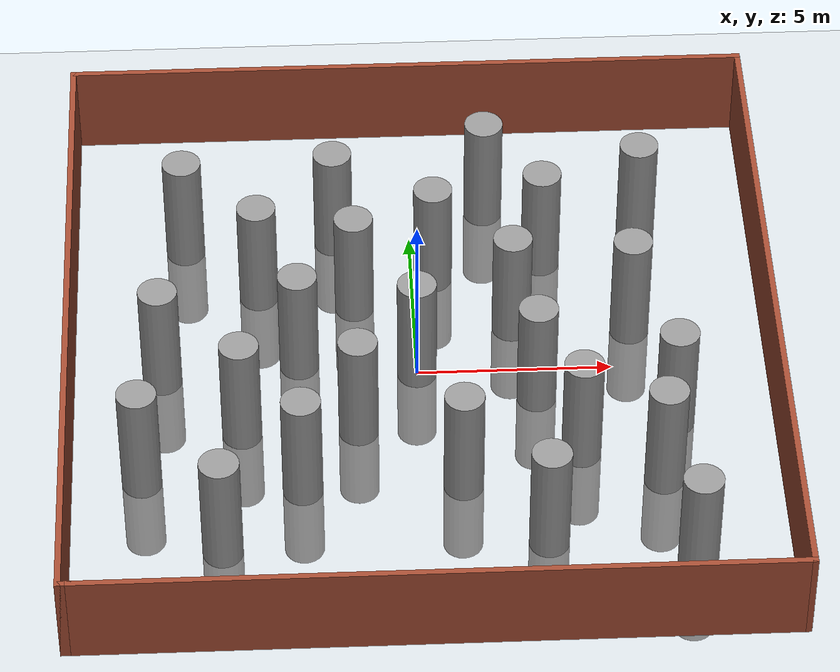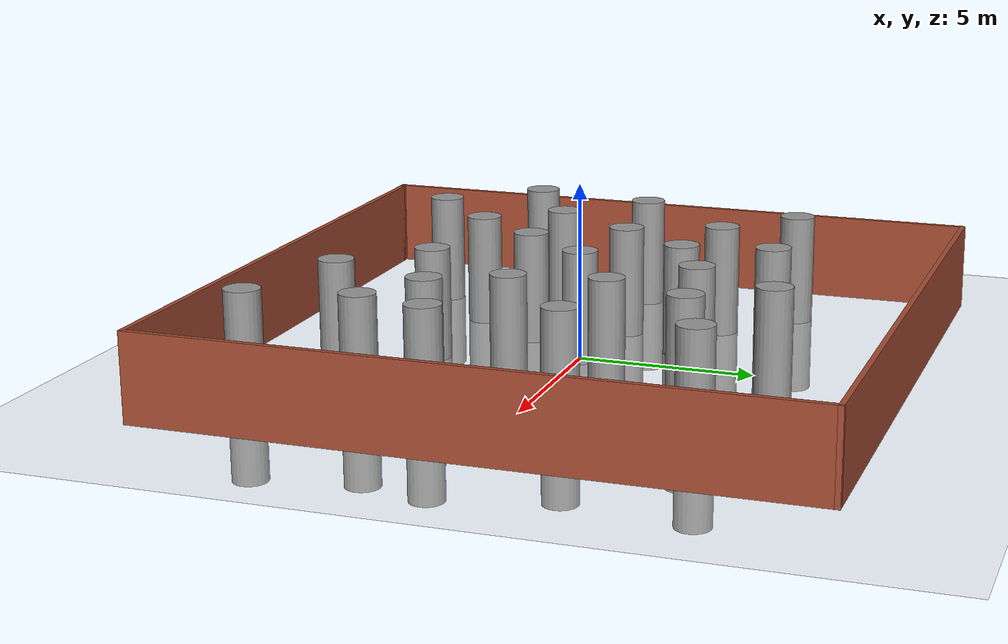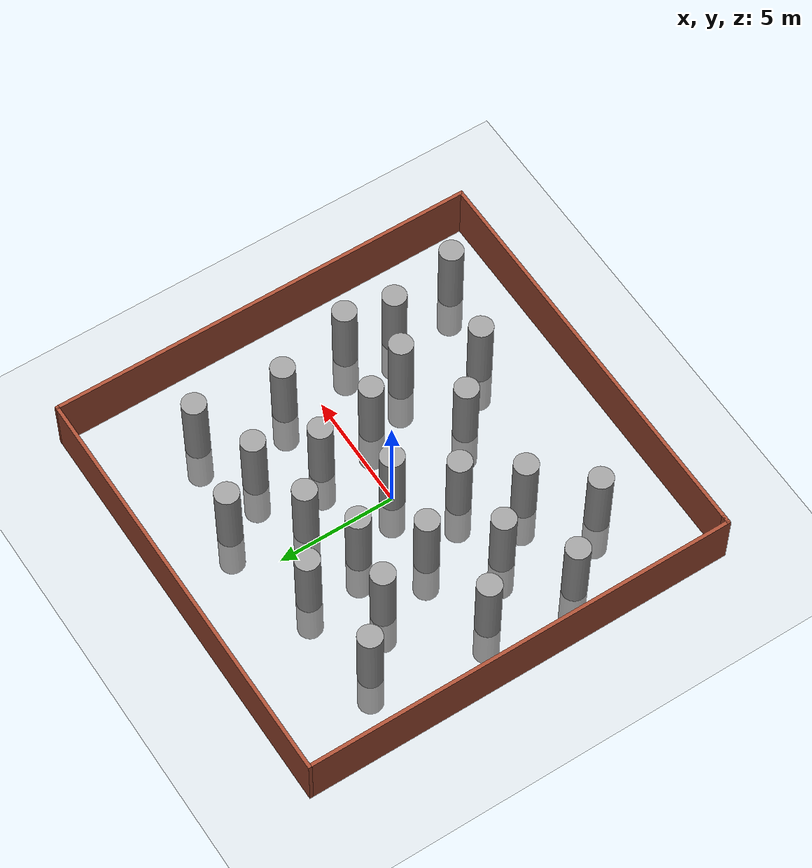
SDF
<sdf version="1.7">
 <world name="default">
  <light name="sun" type="directional">
   <pose>0 0 10 0 -0 0</pose>
   <diffuse>0.8 0.8 0.8 1</diffuse>
   <specular>0.2 0.2 0.2 1</specular>
   <attenuation>
    <range>1000</range>
    <constant>0.9</constant>
    <linear>0.01</linear>
    <quadratic>0.001</quadratic>
   </attenuation>
   <direction>-0.5 0.1 -0.9</direction>
   <spot><inner_angle>0</inner_angle><outer_angle>0</outer_angle><falloff>0</falloff></spot>
  </light>
  <model name="ground_plane">
   <static>1</static>
   <link name="link">
    <collision name="collision">
     <geometry><plane><normal>0 0 1</normal><size>100 100</size></plane></geometry>
     <surface>
      <contact><collide_bitmask>65535</collide_bitmask></contact>
      <friction><ode><mu>100</mu><mu2>50</mu2></ode></friction>
     </surface>
    </collision>
    <visual name="visual">
     <cast_shadows>0</cast_shadows>
     <geometry><plane><normal>0 0 1</normal><size>100 100</size></plane></geometry>
     <material>
      <script><uri>file://media/materials/scripts/gazebo.material</uri><name>Gazebo/Grey</name></script>
     </material>
    </visual>
   </link>
  </model>
  <gravity>0 0 -9.8</gravity>
  <magnetic_field>6e-06 2.3e-05 -4.2e-05</magnetic_field>
  <atmosphere type="adiabatic"/>
  <physics type="ode">
   <max_step_size>0.001</max_step_size>
   <real_time_factor>1</real_time_factor>
   <real_time_update_rate>1000</real_time_update_rate>
  </physics>
  <scene><ambient>0.4 0.4 0.4 1</ambient><background>0.7 0.7 0.7 1</background><shadows>1</shadows></scene>
  <spherical_coordinates>
   <surface_model>EARTH_WGS84</surface_model>
   <latitude_deg>0</latitude_deg>
   <longitude_deg>0</longitude_deg>
   <elevation>0</elevation>
   <heading_deg>0</heading_deg>
  </spherical_coordinates>
  <model name="wall">
   <pose>0.09987 0.064412 0 0 -0 0</pose>
   <link name="Wall_0">
    <collision name="Wall_0_Collision">
     <geometry><box><size>17.75 0.15 2.5</size></box></geometry>
     <pose>0 0 1.25 0 -0 0</pose>
    </collision>
    <visual name="Wall_0_Visual">
     <pose>0 0 1.25 0 -0 0</pose>
     <geometry><box><size>17.75 0.15 2.5</size></box></geometry>
     <material>
      <script><uri>file://media/materials/scripts/gazebo.material</uri><name>Gazebo/Bricks</name></script>
      <ambient>1 1 1 1</ambient>
     </material>
     <meta><layer>0</layer></meta>
    </visual>
    <pose>0.125 -9.175 0 0 -0 0</pose>
   </link>
   <link name="Wall_1">
    <collision name="Wall_1_Collision">
     <geometry><box><size>18.5 0.15 2.5</size></box></geometry>
     <pose>0 0 1.25 0 -0 0</pose>
    </collision>
    <visual name="Wall_1_Visual">
     <pose>0 0 1.25 0 -0 0</pose>
     <geometry><box><size>18.5 0.15 2.5</size></box></geometry>
     <material>
      <script><uri>file://media/materials/scripts/gazebo.material</uri><name>Gazebo/Bricks</name></script>
      <ambient>1 1 1 1</ambient>
     </material>
     <meta><layer>0</layer></meta>
    </visual>
    <pose>8.925 -0 0 0 -0 1.5708</pose>
   </link>
   <link name="Wall_4">
    <collision name="Wall_4_Collision">
     <geometry><box><size>18 0.15 2.5</size></box></geometry>
     <pose>0 0 1.25 0 -0 0</pose>
    </collision>
    <visual name="Wall_4_Visual">
     <pose>0 0 1.25 0 -0 0</pose>
     <geometry><box><size>18 0.15 2.5</size></box></geometry>
     <material>
      <script><uri>file://media/materials/scripts/gazebo.material</uri><name>Gazebo/Bricks</name></script>
      <ambient>1 1 1 1</ambient>
     </material>
     <meta><layer>0</layer></meta>
    </visual>
    <pose>0 9.175 0 0 -0 3.14159</pose>
   </link>
   <link name="Wall_5">
    <collision name="Wall_5_Collision">
     <geometry><box><size>18.5 0.15 2.5</size></box></geometry>
     <pose>0 0 1.25 0 -0 0</pose>
    </collision>
    <visual name="Wall_5_Visual">
     <pose>0 0 1.25 0 -0 0</pose>
     <geometry><box><size>18.5 0.15 2.5</size></box></geometry>
     <material>
      <script><uri>file://media/materials/scripts/gazebo.material</uri><name>Gazebo/Bricks</name></script>
      <ambient>1 1 1 1</ambient>
     </material>
     <meta><layer>0</layer></meta>
    </visual>
    <pose>-8.925 -0 0 0 -0 -1.5708</pose>
   </link>
   <link name="Wall_7">
    <collision name="Wall_7_Collision">
     <geometry><box><size>0.4 0.15 2.5</size></box></geometry>
     <pose>0 0 1.25 0 -0 0</pose>
    </collision>
    <visual name="Wall_7_Visual">
     <pose>0 0 1.25 0 -0 0</pose>
     <geometry><box><size>0.4 0.15 2.5</size></box></geometry>
     <material>
      <script><uri>file://media/materials/scripts/gazebo.material</uri><name>Gazebo/Bricks</name></script>
      <ambient>1 1 1 1</ambient>
     </material>
     <meta><layer>0</layer></meta>
    </visual>
    <pose>-8.8 -9.175 0 0 -0 0</pose>
   </link>
   <static>1</static>
  </model>
  <model name="obstacle_complex哦">
   <link name="link_0">
    <inertial>
     <mass>5.29129</mass>
     <inertia><ixx>12.6759</ixx><ixy>0</ixy><ixz>0</ixz><iyy>12.6759</iyy><iyz>0</iyz><izz>0.661411</izz></inertia>
    </inertial>
    <pose>-6.15295 5.08979 0 0 -0 0</pose>
    <visual name="visual">
     <geometry><cylinder><radius>0.5</radius><length>5.29126</length></cylinder></geometry>
     <material>
      <lighting>1</lighting>
      <script><uri>file://media/materials/scripts/gazebo.material</uri><name>Gazebo/Grey</name></script>
      <shader type="pixel"/>
     </material>
    </visual>
    <collision name="collision">
     <geometry><cylinder><radius>0.5</radius><length>5.29126</length></cylinder></geometry>
     <surface>
      <friction>
       <ode><mu>1</mu><mu2>1</mu2><fdir1>0 0 0</fdir1><slip1>0</slip1><slip2>0</slip2></ode>
       <torsional>
        <coefficient>1</coefficient>
        <patch_radius>0</patch_radius>
        <surface_radius>0</surface_radius>
        <use_patch_radius>1</use_patch_radius>
        <ode><slip>0</slip></ode>
       </torsional>
      </friction>
      <bounce><restitution_coefficient>0</restitution_coefficient><threshold>1e+06</threshold></bounce>
      <contact>
       <collide_without_contact>0</collide_without_contact>
       <collide_without_contact_bitmask>1</collide_without_contact_bitmask>
       <collide_bitmask>1</collide_bitmask>
       <ode>
        <soft_cfm>0</soft_cfm>
        <soft_erp>0.2</soft_erp>
        <kp>1e+13</kp>
        <kd>1</kd>
        <max_vel>0.01</max_vel>
        <min_depth>0</min_depth>
       </ode>
       <bullet>
        <split_impulse>1</split_impulse>
        <split_impulse_penetration_threshold>-0.01</split_impulse_penetration_threshold>
        <soft_cfm>0</soft_cfm>
        <soft_erp>0.2</soft_erp>
        <kp>1e+13</kp>
        <kd>1</kd>
       </bullet>
      </contact>
     </surface>
    </collision>
   </link>
   <link name="link_0_clone">
    <inertial>
     <mass>5.29129</mass>
     <inertia><ixx>12.6759</ixx><ixy>0</ixy><ixz>0</ixz><iyy>12.6759</iyy><iyz>0</iyz><izz>0.661411</izz></inertia>
    </inertial>
    <pose>-4.24123 3.2981 0 0 -0 0</pose>
    <visual name="visual">
     <geometry><cylinder><radius>0.5</radius><length>5.29126</length></cylinder></geometry>
     <material>
      <lighting>1</lighting>
      <script><uri>file://media/materials/scripts/gazebo.material</uri><name>Gazebo/Grey</name></script>
      <shader type="pixel"/>
     </material>
    </visual>
    <collision name="collision">
     <geometry><cylinder><radius>0.5</radius><length>5.29126</length></cylinder></geometry>
     <surface>
      <friction>
       <ode><mu>1</mu><mu2>1</mu2><fdir1>0 0 0</fdir1><slip1>0</slip1><slip2>0</slip2></ode>
       <torsional>
        <coefficient>1</coefficient>
        <patch_radius>0</patch_radius>
        <surface_radius>0</surface_radius>
        <use_patch_radius>1</use_patch_radius>
        <ode><slip>0</slip></ode>
       </torsional>
      </friction>
      <bounce><restitution_coefficient>0</restitution_coefficient><threshold>1e+06</threshold></bounce>
      <contact>
       <collide_without_contact>0</collide_without_contact>
       <collide_without_contact_bitmask>1</collide_without_contact_bitmask>
       <collide_bitmask>1</collide_bitmask>
       <ode>
        <soft_cfm>0</soft_cfm>
        <soft_erp>0.2</soft_erp>
        <kp>1e+13</kp>
        <kd>1</kd>
        <max_vel>0.01</max_vel>
        <min_depth>0</min_depth>
       </ode>
       <bullet>
        <split_impulse>1</split_impulse>
        <split_impulse_penetration_threshold>-0.01</split_impulse_penetration_threshold>
        <soft_cfm>0</soft_cfm>
        <soft_erp>0.2</soft_erp>
        <kp>1e+13</kp>
        <kd>1</kd>
       </bullet>
      </contact>
     </surface>
    </collision>
   </link>
   <link name="link_0_clone_0">
    <inertial>
     <mass>5.29129</mass>
     <inertia><ixx>12.6759</ixx><ixy>0</ixy><ixz>0</ixz><iyy>12.6759</iyy><iyz>0</iyz><izz>0.661411</izz></inertia>
    </inertial>
    <pose>-2.24123 5.2981 0 0 -0 0</pose>
    <visual name="visual">
     <geometry><cylinder><radius>0.5</radius><length>5.29126</length></cylinder></geometry>
     <material>
      <lighting>1</lighting>
      <script><uri>file://media/materials/scripts/gazebo.material</uri><name>Gazebo/Grey</name></script>
      <shader type="pixel"/>
     </material>
    </visual>
    <collision name="collision">
     <geometry><cylinder><radius>0.5</radius><length>5.29126</length></cylinder></geometry>
     <surface>
      <friction>
       <ode><mu>1</mu><mu2>1</mu2><fdir1>0 0 0</fdir1><slip1>0</slip1><slip2>0</slip2></ode>
       <torsional>
        <coefficient>1</coefficient>
        <patch_radius>0</patch_radius>
        <surface_radius>0</surface_radius>
        <use_patch_radius>1</use_patch_radius>
        <ode><slip>0</slip></ode>
       </torsional>
      </friction>
      <bounce><restitution_coefficient>0</restitution_coefficient><threshold>1e+06</threshold></bounce>
      <contact>
       <collide_without_contact>0</collide_without_contact>
       <collide_without_contact_bitmask>1</collide_without_contact_bitmask>
       <collide_bitmask>1</collide_bitmask>
       <ode>
        <soft_cfm>0</soft_cfm>
        <soft_erp>0.2</soft_erp>
        <kp>1e+13</kp>
        <kd>1</kd>
        <max_vel>0.01</max_vel>
        <min_depth>0</min_depth>
       </ode>
       <bullet>
        <split_impulse>1</split_impulse>
        <split_impulse_penetration_threshold>-0.01</split_impulse_penetration_threshold>
        <soft_cfm>0</soft_cfm>
        <soft_erp>0.2</soft_erp>
        <kp>1e+13</kp>
        <kd>1</kd>
       </bullet>
      </contact>
     </surface>
    </collision>
   </link>
   <link name="link_0_clone_1">
    <inertial>
     <mass>5.29129</mass>
     <inertia><ixx>12.6759</ixx><ixy>0</ixy><ixz>0</ixz><iyy>12.6759</iyy><iyz>0</iyz><izz>0.661411</izz></inertia>
    </inertial>
    <pose>-0.241233 0.298101 0 0 -0 0</pose>
    <visual name="visual">
     <geometry><cylinder><radius>0.5</radius><length>5.29126</length></cylinder></geometry>
     <material>
      <lighting>1</lighting>
      <script><uri>file://media/materials/scripts/gazebo.material</uri><name>Gazebo/Grey</name></script>
      <shader type="pixel"/>
     </material>
    </visual>
    <collision name="collision">
     <geometry><cylinder><radius>0.5</radius><length>5.29126</length></cylinder></geometry>
     <surface>
      <friction>
       <ode><mu>1</mu><mu2>1</mu2><fdir1>0 0 0</fdir1><slip1>0</slip1><slip2>0</slip2></ode>
       <torsional>
        <coefficient>1</coefficient>
        <patch_radius>0</patch_radius>
        <surface_radius>0</surface_radius>
        <use_patch_radius>1</use_patch_radius>
        <ode><slip>0</slip></ode>
       </torsional>
      </friction>
      <bounce><restitution_coefficient>0</restitution_coefficient><threshold>1e+06</threshold></bounce>
      <contact>
       <collide_without_contact>0</collide_without_contact>
       <collide_without_contact_bitmask>1</collide_without_contact_bitmask>
       <collide_bitmask>1</collide_bitmask>
       <ode>
        <soft_cfm>0</soft_cfm>
        <soft_erp>0.2</soft_erp>
        <kp>1e+13</kp>
        <kd>1</kd>
        <max_vel>0.01</max_vel>
        <min_depth>0</min_depth>
       </ode>
       <bullet>
        <split_impulse>1</split_impulse>
        <split_impulse_penetration_threshold>-0.01</split_impulse_penetration_threshold>
        <soft_cfm>0</soft_cfm>
        <soft_erp>0.2</soft_erp>
        <kp>1e+13</kp>
        <kd>1</kd>
       </bullet>
      </contact>
     </surface>
    </collision>
   </link>
   <link name="link_0_clone_10">
    <inertial>
     <mass>5.29129</mass>
     <inertia><ixx>12.6759</ixx><ixy>0</ixy><ixz>0</ixz><iyy>12.6759</iyy><iyz>0</iyz><izz>0.661411</izz></inertia>
    </inertial>
    <pose>-1.79235 -1.7019 0 0 -0 0</pose>
    <visual name="visual">
     <geometry><cylinder><radius>0.5</radius><length>5.29126</length></cylinder></geometry>
     <material>
      <lighting>1</lighting>
      <script><uri>file://media/materials/scripts/gazebo.material</uri><name>Gazebo/Grey</name></script>
      <shader type="pixel"/>
     </material>
    </visual>
    <collision name="collision">
     <geometry><cylinder><radius>0.5</radius><length>5.29126</length></cylinder></geometry>
     <surface>
      <friction>
       <ode><mu>1</mu><mu2>1</mu2><fdir1>0 0 0</fdir1><slip1>0</slip1><slip2>0</slip2></ode>
       <torsional>
        <coefficient>1</coefficient>
        <patch_radius>0</patch_radius>
        <surface_radius>0</surface_radius>
        <use_patch_radius>1</use_patch_radius>
        <ode><slip>0</slip></ode>
       </torsional>
      </friction>
      <bounce><restitution_coefficient>0</restitution_coefficient><threshold>1e+06</threshold></bounce>
      <contact>
       <collide_without_contact>0</collide_without_contact>
       <collide_without_contact_bitmask>1</collide_without_contact_bitmask>
       <collide_bitmask>1</collide_bitmask>
       <ode>
        <soft_cfm>0</soft_cfm>
        <soft_erp>0.2</soft_erp>
        <kp>1e+13</kp>
        <kd>1</kd>
        <max_vel>0.01</max_vel>
        <min_depth>0</min_depth>
       </ode>
       <bullet>
        <split_impulse>1</split_impulse>
        <split_impulse_penetration_threshold>-0.01</split_impulse_penetration_threshold>
        <soft_cfm>0</soft_cfm>
        <soft_erp>0.2</soft_erp>
        <kp>1e+13</kp>
        <kd>1</kd>
       </bullet>
      </contact>
     </surface>
    </collision>
   </link>
   <link name="link_0_clone_11">
    <inertial>
     <mass>5.29129</mass>
     <inertia><ixx>12.6759</ixx><ixy>0</ixy><ixz>0</ixz><iyy>12.6759</iyy><iyz>0</iyz><izz>0.661411</izz></inertia>
    </inertial>
    <pose>-3.24123 -3.7019 0 0 -0 0</pose>
    <visual name="visual">
     <geometry><cylinder><radius>0.5</radius><length>5.29126</length></cylinder></geometry>
     <material>
      <lighting>1</lighting>
      <script><uri>file://media/materials/scripts/gazebo.material</uri><name>Gazebo/Grey</name></script>
      <shader type="pixel"/>
     </material>
    </visual>
    <collision name="collision">
     <geometry><cylinder><radius>0.5</radius><length>5.29126</length></cylinder></geometry>
     <surface>
      <friction>
       <ode><mu>1</mu><mu2>1</mu2><fdir1>0 0 0</fdir1><slip1>0</slip1><slip2>0</slip2></ode>
       <torsional>
        <coefficient>1</coefficient>
        <patch_radius>0</patch_radius>
        <surface_radius>0</surface_radius>
        <use_patch_radius>1</use_patch_radius>
        <ode><slip>0</slip></ode>
       </torsional>
      </friction>
      <bounce><restitution_coefficient>0</restitution_coefficient><threshold>1e+06</threshold></bounce>
      <contact>
       <collide_without_contact>0</collide_without_contact>
       <collide_without_contact_bitmask>1</collide_without_contact_bitmask>
       <collide_bitmask>1</collide_bitmask>
       <ode>
        <soft_cfm>0</soft_cfm>
        <soft_erp>0.2</soft_erp>
        <kp>1e+13</kp>
        <kd>1</kd>
        <max_vel>0.01</max_vel>
        <min_depth>0</min_depth>
       </ode>
       <bullet>
        <split_impulse>1</split_impulse>
        <split_impulse_penetration_threshold>-0.01</split_impulse_penetration_threshold>
        <soft_cfm>0</soft_cfm>
        <soft_erp>0.2</soft_erp>
        <kp>1e+13</kp>
        <kd>1</kd>
       </bullet>
      </contact>
     </surface>
    </collision>
   </link>
   <link name="link_0_clone_12">
    <inertial>
     <mass>5.29129</mass>
     <inertia><ixx>12.6759</ixx><ixy>0</ixy><ixz>0</ixz><iyy>12.6759</iyy><iyz>0</iyz><izz>0.661411</izz></inertia>
    </inertial>
    <pose>0.758767 -3.7019 0 0 -0 0</pose>
    <visual name="visual">
     <geometry><cylinder><radius>0.5</radius><length>5.29126</length></cylinder></geometry>
     <material>
      <lighting>1</lighting>
      <script><uri>file://media/materials/scripts/gazebo.material</uri><name>Gazebo/Grey</name></script>
      <shader type="pixel"/>
     </material>
    </visual>
    <collision name="collision">
     <geometry><cylinder><radius>0.5</radius><length>5.29126</length></cylinder></geometry>
     <surface>
      <friction>
       <ode><mu>1</mu><mu2>1</mu2><fdir1>0 0 0</fdir1><slip1>0</slip1><slip2>0</slip2></ode>
       <torsional>
        <coefficient>1</coefficient>
        <patch_radius>0</patch_radius>
        <surface_radius>0</surface_radius>
        <use_patch_radius>1</use_patch_radius>
        <ode><slip>0</slip></ode>
       </torsional>
      </friction>
      <bounce><restitution_coefficient>0</restitution_coefficient><threshold>1e+06</threshold></bounce>
      <contact>
       <collide_without_contact>0</collide_without_contact>
       <collide_without_contact_bitmask>1</collide_without_contact_bitmask>
       <collide_bitmask>1</collide_bitmask>
       <ode>
        <soft_cfm>0</soft_cfm>
        <soft_erp>0.2</soft_erp>
        <kp>1e+13</kp>
        <kd>1</kd>
        <max_vel>0.01</max_vel>
        <min_depth>0</min_depth>
       </ode>
       <bullet>
        <split_impulse>1</split_impulse>
        <split_impulse_penetration_threshold>-0.01</split_impulse_penetration_threshold>
        <soft_cfm>0</soft_cfm>
        <soft_erp>0.2</soft_erp>
        <kp>1e+13</kp>
        <kd>1</kd>
       </bullet>
      </contact>
     </surface>
    </collision>
   </link>
   <link name="link_0_clone_13">
    <inertial>
     <mass>5.29129</mass>
     <inertia><ixx>12.6759</ixx><ixy>0</ixy><ixz>0</ixz><iyy>12.6759</iyy><iyz>0</iyz><izz>0.661411</izz></inertia>
    </inertial>
    <pose>2.75877 -0.701899 0 0 -0 0</pose>
    <visual name="visual">
     <geometry><cylinder><radius>0.5</radius><length>5.29126</length></cylinder></geometry>
     <material>
      <lighting>1</lighting>
      <script><uri>file://media/materials/scripts/gazebo.material</uri><name>Gazebo/Grey</name></script>
      <shader type="pixel"/>
     </material>
    </visual>
    <collision name="collision">
     <geometry><cylinder><radius>0.5</radius><length>5.29126</length></cylinder></geometry>
     <surface>
      <friction>
       <ode><mu>1</mu><mu2>1</mu2><fdir1>0 0 0</fdir1><slip1>0</slip1><slip2>0</slip2></ode>
       <torsional>
        <coefficient>1</coefficient>
        <patch_radius>0</patch_radius>
        <surface_radius>0</surface_radius>
        <use_patch_radius>1</use_patch_radius>
        <ode><slip>0</slip></ode>
       </torsional>
      </friction>
      <bounce><restitution_coefficient>0</restitution_coefficient><threshold>1e+06</threshold></bounce>
      <contact>
       <collide_without_contact>0</collide_without_contact>
       <collide_without_contact_bitmask>1</collide_without_contact_bitmask>
       <collide_bitmask>1</collide_bitmask>
       <ode>
        <soft_cfm>0</soft_cfm>
        <soft_erp>0.2</soft_erp>
        <kp>1e+13</kp>
        <kd>1</kd>
        <max_vel>0.01</max_vel>
        <min_depth>0</min_depth>
       </ode>
       <bullet>
        <split_impulse>1</split_impulse>
        <split_impulse_penetration_threshold>-0.01</split_impulse_penetration_threshold>
        <soft_cfm>0</soft_cfm>
        <soft_erp>0.2</soft_erp>
        <kp>1e+13</kp>
        <kd>1</kd>
       </bullet>
      </contact>
     </surface>
    </collision>
   </link>
   <link name="link_0_clone_14">
    <inertial>
     <mass>5.29129</mass>
     <inertia><ixx>12.6759</ixx><ixy>0</ixy><ixz>0</ixz><iyy>12.6759</iyy><iyz>0</iyz><izz>0.661411</izz></inertia>
    </inertial>
    <pose>5.30897 1.64469 0 0 -0 0</pose>
    <visual name="visual">
     <geometry><cylinder><radius>0.5</radius><length>5.29126</length></cylinder></geometry>
     <material>
      <lighting>1</lighting>
      <script><uri>file://media/materials/scripts/gazebo.material</uri><name>Gazebo/Grey</name></script>
      <shader type="pixel"/>
     </material>
    </visual>
    <collision name="collision">
     <geometry><cylinder><radius>0.5</radius><length>5.29126</length></cylinder></geometry>
     <surface>
      <friction>
       <ode><mu>1</mu><mu2>1</mu2><fdir1>0 0 0</fdir1><slip1>0</slip1><slip2>0</slip2></ode>
       <torsional>
        <coefficient>1</coefficient>
        <patch_radius>0</patch_radius>
        <surface_radius>0</surface_radius>
        <use_patch_radius>1</use_patch_radius>
        <ode><slip>0</slip></ode>
       </torsional>
      </friction>
      <bounce><restitution_coefficient>0</restitution_coefficient><threshold>1e+06</threshold></bounce>
      <contact>
       <collide_without_contact>0</collide_without_contact>
       <collide_without_contact_bitmask>1</collide_without_contact_bitmask>
       <collide_bitmask>1</collide_bitmask>
       <ode>
        <soft_cfm>0</soft_cfm>
        <soft_erp>0.2</soft_erp>
        <kp>1e+13</kp>
        <kd>1</kd>
        <max_vel>0.01</max_vel>
        <min_depth>0</min_depth>
       </ode>
       <bullet>
        <split_impulse>1</split_impulse>
        <split_impulse_penetration_threshold>-0.01</split_impulse_penetration_threshold>
        <soft_cfm>0</soft_cfm>
        <soft_erp>0.2</soft_erp>
        <kp>1e+13</kp>
        <kd>1</kd>
       </bullet>
      </contact>
     </surface>
    </collision>
   </link>
   <link name="link_0_clone_15">
    <inertial>
     <mass>5.29129</mass>
     <inertia><ixx>12.6759</ixx><ixy>0</ixy><ixz>0</ixz><iyy>12.6759</iyy><iyz>0</iyz><izz>0.661411</izz></inertia>
    </inertial>
    <pose>2.26622 1.88148 0 0 -0 0</pose>
    <visual name="visual">
     <geometry><cylinder><radius>0.5</radius><length>5.29126</length></cylinder></geometry>
     <material>
      <lighting>1</lighting>
      <script><uri>file://media/materials/scripts/gazebo.material</uri><name>Gazebo/Grey</name></script>
      <shader type="pixel"/>
     </material>
    </visual>
    <collision name="collision">
     <geometry><cylinder><radius>0.5</radius><length>5.29126</length></cylinder></geometry>
     <surface>
      <friction>
       <ode><mu>1</mu><mu2>1</mu2><fdir1>0 0 0</fdir1><slip1>0</slip1><slip2>0</slip2></ode>
       <torsional>
        <coefficient>1</coefficient>
        <patch_radius>0</patch_radius>
        <surface_radius>0</surface_radius>
        <use_patch_radius>1</use_patch_radius>
        <ode><slip>0</slip></ode>
       </torsional>
      </friction>
      <bounce><restitution_coefficient>0</restitution_coefficient><threshold>1e+06</threshold></bounce>
      <contact>
       <collide_without_contact>0</collide_without_contact>
       <collide_without_contact_bitmask>1</collide_without_contact_bitmask>
       <collide_bitmask>1</collide_bitmask>
       <ode>
        <soft_cfm>0</soft_cfm>
        <soft_erp>0.2</soft_erp>
        <kp>1e+13</kp>
        <kd>1</kd>
        <max_vel>0.01</max_vel>
        <min_depth>0</min_depth>
       </ode>
       <bullet>
        <split_impulse>1</split_impulse>
        <split_impulse_penetration_threshold>-0.01</split_impulse_penetration_threshold>
        <soft_cfm>0</soft_cfm>
        <soft_erp>0.2</soft_erp>
        <kp>1e+13</kp>
        <kd>1</kd>
       </bullet>
      </contact>
     </surface>
    </collision>
   </link>
   <link name="link_0_clone_16">
    <inertial>
     <mass>5.29129</mass>
     <inertia><ixx>12.6759</ixx><ixy>0</ixy><ixz>0</ixz><iyy>12.6759</iyy><iyz>0</iyz><izz>0.661411</izz></inertia>
    </inertial>
    <pose>6.19656 -1.7019 0 0 -0 0</pose>
    <visual name="visual">
     <geometry><cylinder><radius>0.5</radius><length>5.29126</length></cylinder></geometry>
     <material>
      <lighting>1</lighting>
      <script><uri>file://media/materials/scripts/gazebo.material</uri><name>Gazebo/Grey</name></script>
      <shader type="pixel"/>
     </material>
    </visual>
    <collision name="collision">
     <geometry><cylinder><radius>0.5</radius><length>5.29126</length></cylinder></geometry>
     <surface>
      <friction>
       <ode><mu>1</mu><mu2>1</mu2><fdir1>0 0 0</fdir1><slip1>0</slip1><slip2>0</slip2></ode>
       <torsional>
        <coefficient>1</coefficient>
        <patch_radius>0</patch_radius>
        <surface_radius>0</surface_radius>
        <use_patch_radius>1</use_patch_radius>
        <ode><slip>0</slip></ode>
       </torsional>
      </friction>
      <bounce><restitution_coefficient>0</restitution_coefficient><threshold>1e+06</threshold></bounce>
      <contact>
       <collide_without_contact>0</collide_without_contact>
       <collide_without_contact_bitmask>1</collide_without_contact_bitmask>
       <collide_bitmask>1</collide_bitmask>
       <ode>
        <soft_cfm>0</soft_cfm>
        <soft_erp>0.2</soft_erp>
        <kp>1e+13</kp>
        <kd>1</kd>
        <max_vel>0.01</max_vel>
        <min_depth>0</min_depth>
       </ode>
       <bullet>
        <split_impulse>1</split_impulse>
        <split_impulse_penetration_threshold>-0.01</split_impulse_penetration_threshold>
        <soft_cfm>0</soft_cfm>
        <soft_erp>0.2</soft_erp>
        <kp>1e+13</kp>
        <kd>1</kd>
       </bullet>
      </contact>
     </surface>
    </collision>
   </link>
   <link name="link_0_clone_17">
    <inertial>
     <mass>5.29129</mass>
     <inertia><ixx>12.6759</ixx><ixy>0</ixy><ixz>0</ixz><iyy>12.6759</iyy><iyz>0</iyz><izz>0.661411</izz></inertia>
    </inertial>
    <pose>3.75877 -2.7019 0 0 -0 0</pose>
    <visual name="visual">
     <geometry><cylinder><radius>0.5</radius><length>5.29126</length></cylinder></geometry>
     <material>
      <lighting>1</lighting>
      <script><uri>file://media/materials/scripts/gazebo.material</uri><name>Gazebo/Grey</name></script>
      <shader type="pixel"/>
     </material>
    </visual>
    <collision name="collision">
     <geometry><cylinder><radius>0.5</radius><length>5.29126</length></cylinder></geometry>
     <surface>
      <friction>
       <ode><mu>1</mu><mu2>1</mu2><fdir1>0 0 0</fdir1><slip1>0</slip1><slip2>0</slip2></ode>
       <torsional>
        <coefficient>1</coefficient>
        <patch_radius>0</patch_radius>
        <surface_radius>0</surface_radius>
        <use_patch_radius>1</use_patch_radius>
        <ode><slip>0</slip></ode>
       </torsional>
      </friction>
      <bounce><restitution_coefficient>0</restitution_coefficient><threshold>1e+06</threshold></bounce>
      <contact>
       <collide_without_contact>0</collide_without_contact>
       <collide_without_contact_bitmask>1</collide_without_contact_bitmask>
       <collide_bitmask>1</collide_bitmask>
       <ode>
        <soft_cfm>0</soft_cfm>
        <soft_erp>0.2</soft_erp>
        <kp>1e+13</kp>
        <kd>1</kd>
        <max_vel>0.01</max_vel>
        <min_depth>0</min_depth>
       </ode>
       <bullet>
        <split_impulse>1</split_impulse>
        <split_impulse_penetration_threshold>-0.01</split_impulse_penetration_threshold>
        <soft_cfm>0</soft_cfm>
        <soft_erp>0.2</soft_erp>
        <kp>1e+13</kp>
        <kd>1</kd>
       </bullet>
      </contact>
     </surface>
    </collision>
   </link>
   <link name="link_0_clone_18">
    <inertial>
     <mass>5.29129</mass>
     <inertia><ixx>12.6759</ixx><ixy>0</ixy><ixz>0</ixz><iyy>12.6759</iyy><iyz>0</iyz><izz>0.661411</izz></inertia>
    </inertial>
    <pose>5.75877 -3.7019 0 0 -0 0</pose>
    <visual name="visual">
     <geometry><cylinder><radius>0.5</radius><length>5.29126</length></cylinder></geometry>
     <material>
      <lighting>1</lighting>
      <script><uri>file://media/materials/scripts/gazebo.material</uri><name>Gazebo/Grey</name></script>
      <shader type="pixel"/>
     </material>
    </visual>
    <collision name="collision">
     <geometry><cylinder><radius>0.5</radius><length>5.29126</length></cylinder></geometry>
     <surface>
      <friction>
       <ode><mu>1</mu><mu2>1</mu2><fdir1>0 0 0</fdir1><slip1>0</slip1><slip2>0</slip2></ode>
       <torsional>
        <coefficient>1</coefficient>
        <patch_radius>0</patch_radius>
        <surface_radius>0</surface_radius>
        <use_patch_radius>1</use_patch_radius>
        <ode><slip>0</slip></ode>
       </torsional>
      </friction>
      <bounce><restitution_coefficient>0</restitution_coefficient><threshold>1e+06</threshold></bounce>
      <contact>
       <collide_without_contact>0</collide_without_contact>
       <collide_without_contact_bitmask>1</collide_without_contact_bitmask>
       <collide_bitmask>1</collide_bitmask>
       <ode>
        <soft_cfm>0</soft_cfm>
        <soft_erp>0.2</soft_erp>
        <kp>1e+13</kp>
        <kd>1</kd>
        <max_vel>0.01</max_vel>
        <min_depth>0</min_depth>
       </ode>
       <bullet>
        <split_impulse>1</split_impulse>
        <split_impulse_penetration_threshold>-0.01</split_impulse_penetration_threshold>
        <soft_cfm>0</soft_cfm>
        <soft_erp>0.2</soft_erp>
        <kp>1e+13</kp>
        <kd>1</kd>
       </bullet>
      </contact>
     </surface>
    </collision>
   </link>
   <link name="link_0_clone_19">
    <inertial>
     <mass>5.29129</mass>
     <inertia><ixx>12.6759</ixx><ixy>0</ixy><ixz>0</ixz><iyy>12.6759</iyy><iyz>0</iyz><izz>0.661411</izz></inertia>
    </inertial>
    <pose>1.75877 6.2981 0 0 -0 0</pose>
    <visual name="visual">
     <geometry><cylinder><radius>0.5</radius><length>5.29126</length></cylinder></geometry>
     <material>
      <lighting>1</lighting>
      <script><uri>file://media/materials/scripts/gazebo.material</uri><name>Gazebo/Grey</name></script>
      <shader type="pixel"/>
     </material>
    </visual>
    <collision name="collision">
     <geometry><cylinder><radius>0.5</radius><length>5.29126</length></cylinder></geometry>
     <surface>
      <friction>
       <ode><mu>1</mu><mu2>1</mu2><fdir1>0 0 0</fdir1><slip1>0</slip1><slip2>0</slip2></ode>
       <torsional>
        <coefficient>1</coefficient>
        <patch_radius>0</patch_radius>
        <surface_radius>0</surface_radius>
        <use_patch_radius>1</use_patch_radius>
        <ode><slip>0</slip></ode>
       </torsional>
      </friction>
      <bounce><restitution_coefficient>0</restitution_coefficient><threshold>1e+06</threshold></bounce>
      <contact>
       <collide_without_contact>0</collide_without_contact>
       <collide_without_contact_bitmask>1</collide_without_contact_bitmask>
       <collide_bitmask>1</collide_bitmask>
       <ode>
        <soft_cfm>0</soft_cfm>
        <soft_erp>0.2</soft_erp>
        <kp>1e+13</kp>
        <kd>1</kd>
        <max_vel>0.01</max_vel>
        <min_depth>0</min_depth>
       </ode>
       <bullet>
        <split_impulse>1</split_impulse>
        <split_impulse_penetration_threshold>-0.01</split_impulse_penetration_threshold>
        <soft_cfm>0</soft_cfm>
        <soft_erp>0.2</soft_erp>
        <kp>1e+13</kp>
        <kd>1</kd>
       </bullet>
      </contact>
     </surface>
    </collision>
   </link>
   <link name="link_0_clone_2">
    <inertial>
     <mass>5.29129</mass>
     <inertia><ixx>12.6759</ixx><ixy>0</ixy><ixz>0</ixz><iyy>12.6759</iyy><iyz>0</iyz><izz>0.661411</izz></inertia>
    </inertial>
    <pose>5.75877 5.2981 0 0 -0 0</pose>
    <visual name="visual">
     <geometry><cylinder><radius>0.5</radius><length>5.29126</length></cylinder></geometry>
     <material>
      <lighting>1</lighting>
      <script><uri>file://media/materials/scripts/gazebo.material</uri><name>Gazebo/Grey</name></script>
      <shader type="pixel"/>
     </material>
    </visual>
    <collision name="collision">
     <geometry><cylinder><radius>0.5</radius><length>5.29126</length></cylinder></geometry>
     <surface>
      <friction>
       <ode><mu>1</mu><mu2>1</mu2><fdir1>0 0 0</fdir1><slip1>0</slip1><slip2>0</slip2></ode>
       <torsional>
        <coefficient>1</coefficient>
        <patch_radius>0</patch_radius>
        <surface_radius>0</surface_radius>
        <use_patch_radius>1</use_patch_radius>
        <ode><slip>0</slip></ode>
       </torsional>
      </friction>
      <bounce><restitution_coefficient>0</restitution_coefficient><threshold>1e+06</threshold></bounce>
      <contact>
       <collide_without_contact>0</collide_without_contact>
       <collide_without_contact_bitmask>1</collide_without_contact_bitmask>
       <collide_bitmask>1</collide_bitmask>
       <ode>
        <soft_cfm>0</soft_cfm>
        <soft_erp>0.2</soft_erp>
        <kp>1e+13</kp>
        <kd>1</kd>
        <max_vel>0.01</max_vel>
        <min_depth>0</min_depth>
       </ode>
       <bullet>
        <split_impulse>1</split_impulse>
        <split_impulse_penetration_threshold>-0.01</split_impulse_penetration_threshold>
        <soft_cfm>0</soft_cfm>
        <soft_erp>0.2</soft_erp>
        <kp>1e+13</kp>
        <kd>1</kd>
       </bullet>
      </contact>
     </surface>
    </collision>
   </link>
   <link name="link_0_clone_20">
    <inertial>
     <mass>5.29129</mass>
     <inertia><ixx>12.6759</ixx><ixy>0</ixy><ixz>0</ixz><iyy>12.6759</iyy><iyz>0</iyz><izz>0.661411</izz></inertia>
    </inertial>
    <pose>-5.24123 -5.7019 0 0 -0 0</pose>
    <visual name="visual">
     <geometry><cylinder><radius>0.5</radius><length>5.29126</length></cylinder></geometry>
     <material>
      <lighting>1</lighting>
      <script><uri>file://media/materials/scripts/gazebo.material</uri><name>Gazebo/Grey</name></script>
      <shader type="pixel"/>
     </material>
    </visual>
    <collision name="collision">
     <geometry><cylinder><radius>0.5</radius><length>5.29126</length></cylinder></geometry>
     <surface>
      <friction>
       <ode><mu>1</mu><mu2>1</mu2><fdir1>0 0 0</fdir1><slip1>0</slip1><slip2>0</slip2></ode>
       <torsional>
        <coefficient>1</coefficient>
        <patch_radius>0</patch_radius>
        <surface_radius>0</surface_radius>
        <use_patch_radius>1</use_patch_radius>
        <ode><slip>0</slip></ode>
       </torsional>
      </friction>
      <bounce><restitution_coefficient>0</restitution_coefficient><threshold>1e+06</threshold></bounce>
      <contact>
       <collide_without_contact>0</collide_without_contact>
       <collide_without_contact_bitmask>1</collide_without_contact_bitmask>
       <collide_bitmask>1</collide_bitmask>
       <ode>
        <soft_cfm>0</soft_cfm>
        <soft_erp>0.2</soft_erp>
        <kp>1e+13</kp>
        <kd>1</kd>
        <max_vel>0.01</max_vel>
        <min_depth>0</min_depth>
       </ode>
       <bullet>
        <split_impulse>1</split_impulse>
        <split_impulse_penetration_threshold>-0.01</split_impulse_penetration_threshold>
        <soft_cfm>0</soft_cfm>
        <soft_erp>0.2</soft_erp>
        <kp>1e+13</kp>
        <kd>1</kd>
       </bullet>
      </contact>
     </surface>
    </collision>
   </link>
   <link name="link_0_clone_21">
    <inertial>
     <mass>5.29129</mass>
     <inertia><ixx>12.6759</ixx><ixy>0</ixy><ixz>0</ixz><iyy>12.6759</iyy><iyz>0</iyz><izz>0.661411</izz></inertia>
    </inertial>
    <pose>2.75877 -5.7019 0 0 -0 0</pose>
    <visual name="visual">
     <geometry><cylinder><radius>0.5</radius><length>5.29126</length></cylinder></geometry>
     <material>
      <lighting>1</lighting>
      <script><uri>file://media/materials/scripts/gazebo.material</uri><name>Gazebo/Grey</name></script>
      <shader type="pixel"/>
     </material>
    </visual>
    <collision name="collision">
     <geometry><cylinder><radius>0.5</radius><length>5.29126</length></cylinder></geometry>
     <surface>
      <friction>
       <ode><mu>1</mu><mu2>1</mu2><fdir1>0 0 0</fdir1><slip1>0</slip1><slip2>0</slip2></ode>
       <torsional>
        <coefficient>1</coefficient>
        <patch_radius>0</patch_radius>
        <surface_radius>0</surface_radius>
        <use_patch_radius>1</use_patch_radius>
        <ode><slip>0</slip></ode>
       </torsional>
      </friction>
      <bounce><restitution_coefficient>0</restitution_coefficient><threshold>1e+06</threshold></bounce>
      <contact>
       <collide_without_contact>0</collide_without_contact>
       <collide_without_contact_bitmask>1</collide_without_contact_bitmask>
       <collide_bitmask>1</collide_bitmask>
       <ode>
        <soft_cfm>0</soft_cfm>
        <soft_erp>0.2</soft_erp>
        <kp>1e+13</kp>
        <kd>1</kd>
        <max_vel>0.01</max_vel>
        <min_depth>0</min_depth>
       </ode>
       <bullet>
        <split_impulse>1</split_impulse>
        <split_impulse_penetration_threshold>-0.01</split_impulse_penetration_threshold>
        <soft_cfm>0</soft_cfm>
        <soft_erp>0.2</soft_erp>
        <kp>1e+13</kp>
        <kd>1</kd>
       </bullet>
      </contact>
     </surface>
    </collision>
   </link>
   <link name="link_0_clone_22">
    <inertial>
     <mass>5.29129</mass>
     <inertia><ixx>12.6759</ixx><ixy>0</ixy><ixz>0</ixz><iyy>12.6759</iyy><iyz>0</iyz><izz>0.661411</izz></inertia>
    </inertial>
    <pose>6.31606 -6.7019 0 0 -0 0</pose>
    <visual name="visual">
     <geometry><cylinder><radius>0.5</radius><length>5.29126</length></cylinder></geometry>
     <material>
      <lighting>1</lighting>
      <script><uri>file://media/materials/scripts/gazebo.material</uri><name>Gazebo/Grey</name></script>
      <shader type="pixel"/>
     </material>
    </visual>
    <collision name="collision">
     <geometry><cylinder><radius>0.5</radius><length>5.29126</length></cylinder></geometry>
     <surface>
      <friction>
       <ode><mu>1</mu><mu2>1</mu2><fdir1>0 0 0</fdir1><slip1>0</slip1><slip2>0</slip2></ode>
       <torsional>
        <coefficient>1</coefficient>
        <patch_radius>0</patch_radius>
        <surface_radius>0</surface_radius>
        <use_patch_radius>1</use_patch_radius>
        <ode><slip>0</slip></ode>
       </torsional>
      </friction>
      <bounce><restitution_coefficient>0</restitution_coefficient><threshold>1e+06</threshold></bounce>
      <contact>
       <collide_without_contact>0</collide_without_contact>
       <collide_without_contact_bitmask>1</collide_without_contact_bitmask>
       <collide_bitmask>1</collide_bitmask>
       <ode>
        <soft_cfm>0</soft_cfm>
        <soft_erp>0.2</soft_erp>
        <kp>1e+13</kp>
        <kd>1</kd>
        <max_vel>0.01</max_vel>
        <min_depth>0</min_depth>
       </ode>
       <bullet>
        <split_impulse>1</split_impulse>
        <split_impulse_penetration_threshold>-0.01</split_impulse_penetration_threshold>
        <soft_cfm>0</soft_cfm>
        <soft_erp>0.2</soft_erp>
        <kp>1e+13</kp>
        <kd>1</kd>
       </bullet>
      </contact>
     </surface>
    </collision>
   </link>
   <link name="link_0_clone_3">
    <inertial>
     <mass>5.29129</mass>
     <inertia><ixx>12.6759</ixx><ixy>0</ixy><ixz>0</ixz><iyy>12.6759</iyy><iyz>0</iyz><izz>0.661411</izz></inertia>
    </inertial>
    <pose>0.31578 3.80553 0 0 -0 0</pose>
    <visual name="visual">
     <geometry><cylinder><radius>0.5</radius><length>5.29126</length></cylinder></geometry>
     <material>
      <lighting>1</lighting>
      <script><uri>file://media/materials/scripts/gazebo.material</uri><name>Gazebo/Grey</name></script>
      <shader type="pixel"/>
     </material>
    </visual>
    <collision name="collision">
     <geometry><cylinder><radius>0.5</radius><length>5.29126</length></cylinder></geometry>
     <surface>
      <friction>
       <ode><mu>1</mu><mu2>1</mu2><fdir1>0 0 0</fdir1><slip1>0</slip1><slip2>0</slip2></ode>
       <torsional>
        <coefficient>1</coefficient>
        <patch_radius>0</patch_radius>
        <surface_radius>0</surface_radius>
        <use_patch_radius>1</use_patch_radius>
        <ode><slip>0</slip></ode>
       </torsional>
      </friction>
      <bounce><restitution_coefficient>0</restitution_coefficient><threshold>1e+06</threshold></bounce>
      <contact>
       <collide_without_contact>0</collide_without_contact>
       <collide_without_contact_bitmask>1</collide_without_contact_bitmask>
       <collide_bitmask>1</collide_bitmask>
       <ode>
        <soft_cfm>0</soft_cfm>
        <soft_erp>0.2</soft_erp>
        <kp>1e+13</kp>
        <kd>1</kd>
        <max_vel>0.01</max_vel>
        <min_depth>0</min_depth>
       </ode>
       <bullet>
        <split_impulse>1</split_impulse>
        <split_impulse_penetration_threshold>-0.01</split_impulse_penetration_threshold>
        <soft_cfm>0</soft_cfm>
        <soft_erp>0.2</soft_erp>
        <kp>1e+13</kp>
        <kd>1</kd>
       </bullet>
      </contact>
     </surface>
    </collision>
   </link>
   <link name="link_0_clone_4">
    <inertial>
     <mass>5.29129</mass>
     <inertia><ixx>12.6759</ixx><ixy>0</ixy><ixz>0</ixz><iyy>12.6759</iyy><iyz>0</iyz><izz>0.661411</izz></inertia>
    </inertial>
    <pose>3.16354 4.2981 0 0 -0 0</pose>
    <visual name="visual">
     <geometry><cylinder><radius>0.5</radius><length>5.29126</length></cylinder></geometry>
     <material>
      <lighting>1</lighting>
      <script><uri>file://media/materials/scripts/gazebo.material</uri><name>Gazebo/Grey</name></script>
      <shader type="pixel"/>
     </material>
    </visual>
    <collision name="collision">
     <geometry><cylinder><radius>0.5</radius><length>5.29126</length></cylinder></geometry>
     <surface>
      <friction>
       <ode><mu>1</mu><mu2>1</mu2><fdir1>0 0 0</fdir1><slip1>0</slip1><slip2>0</slip2></ode>
       <torsional>
        <coefficient>1</coefficient>
        <patch_radius>0</patch_radius>
        <surface_radius>0</surface_radius>
        <use_patch_radius>1</use_patch_radius>
        <ode><slip>0</slip></ode>
       </torsional>
      </friction>
      <bounce><restitution_coefficient>0</restitution_coefficient><threshold>1e+06</threshold></bounce>
      <contact>
       <collide_without_contact>0</collide_without_contact>
       <collide_without_contact_bitmask>1</collide_without_contact_bitmask>
       <collide_bitmask>1</collide_bitmask>
       <ode>
        <soft_cfm>0</soft_cfm>
        <soft_erp>0.2</soft_erp>
        <kp>1e+13</kp>
        <kd>1</kd>
        <max_vel>0.01</max_vel>
        <min_depth>0</min_depth>
       </ode>
       <bullet>
        <split_impulse>1</split_impulse>
        <split_impulse_penetration_threshold>-0.01</split_impulse_penetration_threshold>
        <soft_cfm>0</soft_cfm>
        <soft_erp>0.2</soft_erp>
        <kp>1e+13</kp>
        <kd>1</kd>
       </bullet>
      </contact>
     </surface>
    </collision>
   </link>
   <link name="link_0_clone_5">
    <inertial>
     <mass>5.29129</mass>
     <inertia><ixx>12.6759</ixx><ixy>0</ixy><ixz>0</ixz><iyy>12.6759</iyy><iyz>0</iyz><izz>0.661411</izz></inertia>
    </inertial>
    <pose>-6.74787 0.298101 0 0 -0 0</pose>
    <visual name="visual">
     <geometry><cylinder><radius>0.5</radius><length>5.29126</length></cylinder></geometry>
     <material>
      <lighting>1</lighting>
      <script><uri>file://media/materials/scripts/gazebo.material</uri><name>Gazebo/Grey</name></script>
      <shader type="pixel"/>
     </material>
    </visual>
    <collision name="collision">
     <geometry><cylinder><radius>0.5</radius><length>5.29126</length></cylinder></geometry>
     <surface>
      <friction>
       <ode><mu>1</mu><mu2>1</mu2><fdir1>0 0 0</fdir1><slip1>0</slip1><slip2>0</slip2></ode>
       <torsional>
        <coefficient>1</coefficient>
        <patch_radius>0</patch_radius>
        <surface_radius>0</surface_radius>
        <use_patch_radius>1</use_patch_radius>
        <ode><slip>0</slip></ode>
       </torsional>
      </friction>
      <bounce><restitution_coefficient>0</restitution_coefficient><threshold>1e+06</threshold></bounce>
      <contact>
       <collide_without_contact>0</collide_without_contact>
       <collide_without_contact_bitmask>1</collide_without_contact_bitmask>
       <collide_bitmask>1</collide_bitmask>
       <ode>
        <soft_cfm>0</soft_cfm>
        <soft_erp>0.2</soft_erp>
        <kp>1e+13</kp>
        <kd>1</kd>
        <max_vel>0.01</max_vel>
        <min_depth>0</min_depth>
       </ode>
       <bullet>
        <split_impulse>1</split_impulse>
        <split_impulse_penetration_threshold>-0.01</split_impulse_penetration_threshold>
        <soft_cfm>0</soft_cfm>
        <soft_erp>0.2</soft_erp>
        <kp>1e+13</kp>
        <kd>1</kd>
       </bullet>
      </contact>
     </surface>
    </collision>
   </link>
   <link name="link_0_clone_6">
    <inertial>
     <mass>5.29129</mass>
     <inertia><ixx>12.6759</ixx><ixy>0</ixy><ixz>0</ixz><iyy>12.6759</iyy><iyz>0</iyz><izz>0.661411</izz></inertia>
    </inertial>
    <pose>-3.24123 0.708137 0 0 -0 0</pose>
    <visual name="visual">
     <geometry><cylinder><radius>0.5</radius><length>5.29126</length></cylinder></geometry>
     <material>
      <lighting>1</lighting>
      <script><uri>file://media/materials/scripts/gazebo.material</uri><name>Gazebo/Grey</name></script>
      <shader type="pixel"/>
     </material>
    </visual>
    <collision name="collision">
     <geometry><cylinder><radius>0.5</radius><length>5.29126</length></cylinder></geometry>
     <surface>
      <friction>
       <ode><mu>1</mu><mu2>1</mu2><fdir1>0 0 0</fdir1><slip1>0</slip1><slip2>0</slip2></ode>
       <torsional>
        <coefficient>1</coefficient>
        <patch_radius>0</patch_radius>
        <surface_radius>0</surface_radius>
        <use_patch_radius>1</use_patch_radius>
        <ode><slip>0</slip></ode>
       </torsional>
      </friction>
      <bounce><restitution_coefficient>0</restitution_coefficient><threshold>1e+06</threshold></bounce>
      <contact>
       <collide_without_contact>0</collide_without_contact>
       <collide_without_contact_bitmask>1</collide_without_contact_bitmask>
       <collide_bitmask>1</collide_bitmask>
       <ode>
        <soft_cfm>0</soft_cfm>
        <soft_erp>0.2</soft_erp>
        <kp>1e+13</kp>
        <kd>1</kd>
        <max_vel>0.01</max_vel>
        <min_depth>0</min_depth>
       </ode>
       <bullet>
        <split_impulse>1</split_impulse>
        <split_impulse_penetration_threshold>-0.01</split_impulse_penetration_threshold>
        <soft_cfm>0</soft_cfm>
        <soft_erp>0.2</soft_erp>
        <kp>1e+13</kp>
        <kd>1</kd>
       </bullet>
      </contact>
     </surface>
    </collision>
   </link>
   <link name="link_0_clone_7">
    <inertial>
     <mass>5.29129</mass>
     <inertia><ixx>12.6759</ixx><ixy>0</ixy><ixz>0</ixz><iyy>12.6759</iyy><iyz>0</iyz><izz>0.661411</izz></inertia>
    </inertial>
    <pose>-4.73134 -1.7019 0 0 -0 0</pose>
    <visual name="visual">
     <geometry><cylinder><radius>0.5</radius><length>5.29126</length></cylinder></geometry>
     <material>
      <lighting>1</lighting>
      <script><uri>file://media/materials/scripts/gazebo.material</uri><name>Gazebo/Grey</name></script>
      <shader type="pixel"/>
     </material>
    </visual>
    <collision name="collision">
     <geometry><cylinder><radius>0.5</radius><length>5.29126</length></cylinder></geometry>
     <surface>
      <friction>
       <ode><mu>1</mu><mu2>1</mu2><fdir1>0 0 0</fdir1><slip1>0</slip1><slip2>0</slip2></ode>
       <torsional>
        <coefficient>1</coefficient>
        <patch_radius>0</patch_radius>
        <surface_radius>0</surface_radius>
        <use_patch_radius>1</use_patch_radius>
        <ode><slip>0</slip></ode>
       </torsional>
      </friction>
      <bounce><restitution_coefficient>0</restitution_coefficient><threshold>1e+06</threshold></bounce>
      <contact>
       <collide_without_contact>0</collide_without_contact>
       <collide_without_contact_bitmask>1</collide_without_contact_bitmask>
       <collide_bitmask>1</collide_bitmask>
       <ode>
        <soft_cfm>0</soft_cfm>
        <soft_erp>0.2</soft_erp>
        <kp>1e+13</kp>
        <kd>1</kd>
        <max_vel>0.01</max_vel>
        <min_depth>0</min_depth>
       </ode>
       <bullet>
        <split_impulse>1</split_impulse>
        <split_impulse_penetration_threshold>-0.01</split_impulse_penetration_threshold>
        <soft_cfm>0</soft_cfm>
        <soft_erp>0.2</soft_erp>
        <kp>1e+13</kp>
        <kd>1</kd>
       </bullet>
      </contact>
     </surface>
    </collision>
   </link>
   <link name="link_0_clone_8">
    <inertial>
     <mass>5.29129</mass>
     <inertia><ixx>12.6759</ixx><ixy>0</ixy><ixz>0</ixz><iyy>12.6759</iyy><iyz>0</iyz><izz>0.661411</izz></inertia>
    </inertial>
    <pose>-7.24123 -3.28032 0 0 -0 0</pose>
    <visual name="visual">
     <geometry><cylinder><radius>0.5</radius><length>5.29126</length></cylinder></geometry>
     <material>
      <lighting>1</lighting>
      <script><uri>file://media/materials/scripts/gazebo.material</uri><name>Gazebo/Grey</name></script>
      <shader type="pixel"/>
     </material>
    </visual>
    <collision name="collision">
     <geometry><cylinder><radius>0.5</radius><length>5.29126</length></cylinder></geometry>
     <surface>
      <friction>
       <ode><mu>1</mu><mu2>1</mu2><fdir1>0 0 0</fdir1><slip1>0</slip1><slip2>0</slip2></ode>
       <torsional>
        <coefficient>1</coefficient>
        <patch_radius>0</patch_radius>
        <surface_radius>0</surface_radius>
        <use_patch_radius>1</use_patch_radius>
        <ode><slip>0</slip></ode>
       </torsional>
      </friction>
      <bounce><restitution_coefficient>0</restitution_coefficient><threshold>1e+06</threshold></bounce>
      <contact>
       <collide_without_contact>0</collide_without_contact>
       <collide_without_contact_bitmask>1</collide_without_contact_bitmask>
       <collide_bitmask>1</collide_bitmask>
       <ode>
        <soft_cfm>0</soft_cfm>
        <soft_erp>0.2</soft_erp>
        <kp>1e+13</kp>
        <kd>1</kd>
        <max_vel>0.01</max_vel>
        <min_depth>0</min_depth>
       </ode>
       <bullet>
        <split_impulse>1</split_impulse>
        <split_impulse_penetration_threshold>-0.01</split_impulse_penetration_threshold>
        <soft_cfm>0</soft_cfm>
        <soft_erp>0.2</soft_erp>
        <kp>1e+13</kp>
        <kd>1</kd>
       </bullet>
      </contact>
     </surface>
    </collision>
   </link>
   <link name="link_0_clone_9">
    <inertial>
     <mass>5.29129</mass>
     <inertia><ixx>12.6759</ixx><ixy>0</ixy><ixz>0</ixz><iyy>12.6759</iyy><iyz>0</iyz><izz>0.661411</izz></inertia>
    </inertial>
    <pose>-1.76536 2.78487 0 0 -0 0</pose>
    <visual name="visual">
     <geometry><cylinder><radius>0.5</radius><length>5.29126</length></cylinder></geometry>
     <material>
      <lighting>1</lighting>
      <script><uri>file://media/materials/scripts/gazebo.material</uri><name>Gazebo/Grey</name></script>
      <shader type="pixel"/>
     </material>
    </visual>
    <collision name="collision">
     <geometry><cylinder><radius>0.5</radius><length>5.29126</length></cylinder></geometry>
     <surface>
      <friction>
       <ode><mu>1</mu><mu2>1</mu2><fdir1>0 0 0</fdir1><slip1>0</slip1><slip2>0</slip2></ode>
       <torsional>
        <coefficient>1</coefficient>
        <patch_radius>0</patch_radius>
        <surface_radius>0</surface_radius>
        <use_patch_radius>1</use_patch_radius>
        <ode><slip>0</slip></ode>
       </torsional>
      </friction>
      <bounce><restitution_coefficient>0</restitution_coefficient><threshold>1e+06</threshold></bounce>
      <contact>
       <collide_without_contact>0</collide_without_contact>
       <collide_without_contact_bitmask>1</collide_without_contact_bitmask>
       <collide_bitmask>1</collide_bitmask>
       <ode>
        <soft_cfm>0</soft_cfm>
        <soft_erp>0.2</soft_erp>
        <kp>1e+13</kp>
        <kd>1</kd>
        <max_vel>0.01</max_vel>
        <min_depth>0</min_depth>
       </ode>
       <bullet>
        <split_impulse>1</split_impulse>
        <split_impulse_penetration_threshold>-0.01</split_impulse_penetration_threshold>
        <soft_cfm>0</soft_cfm>
        <soft_erp>0.2</soft_erp>
        <kp>1e+13</kp>
        <kd>1</kd>
       </bullet>
      </contact>
     </surface>
    </collision>
   </link>
   <static>0</static>
   <pose>0.241233 -0.298101 0.5 0 -0 0</pose>
  </model>
 </world>
</sdf>
